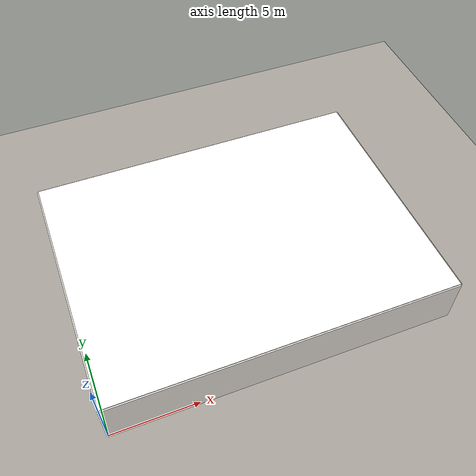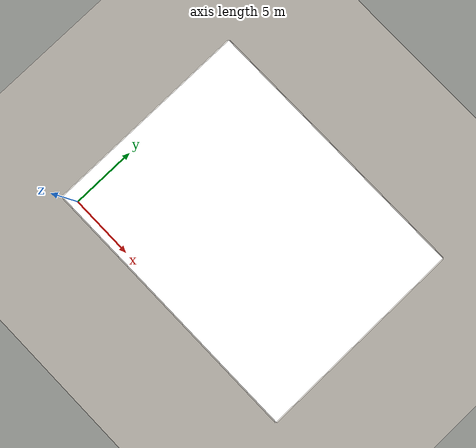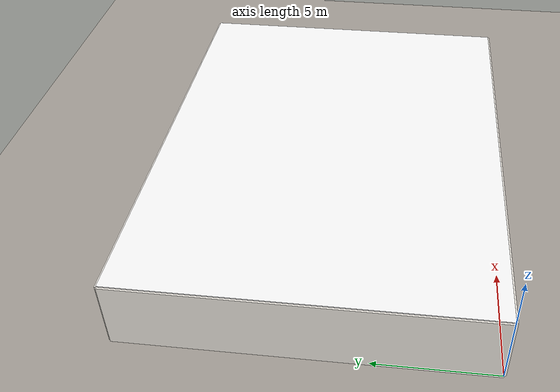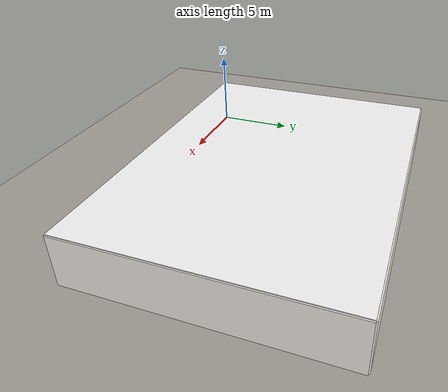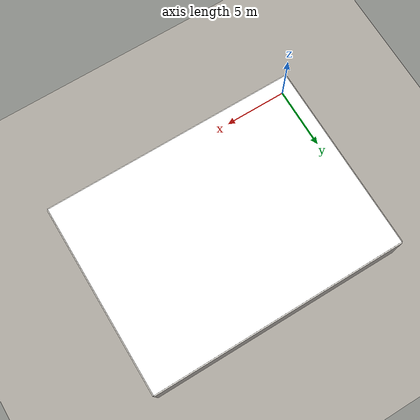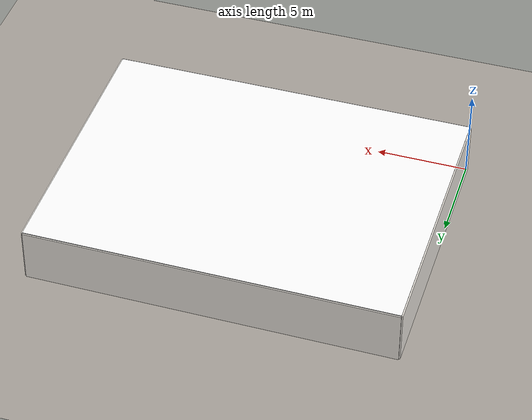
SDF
<sdf version="1.9">
 <world name="office_environment">
  <physics name="1ms" type="ode">
   <max_step_size>0.001</max_step_size>
   <real_time_factor>1.0</real_time_factor>
   <real_time_update_rate>1000</real_time_update_rate>
  </physics>
  <plugin filename="gz-sim-physics-system" name="gz::sim::systems::Physics"/>
  <plugin filename="gz-sim-sensors-system" name="gz::sim::systems::Sensors">
   <render_engine>ogre2</render_engine>
  </plugin>
  <plugin filename="gz-sim-user-commands-system" name="gz::sim::systems::UserCommands"/>
  <plugin filename="gz-sim-scene-broadcaster-system" name="gz::sim::systems::SceneBroadcaster"/>
  <plugin filename="gz-sim-imu-system" name="gz::sim::systems::Imu"/>
  <plugin filename="gz-sim-altimeter-system" name="gz::sim::systems::Altimeter"/>
  <light type="directional" name="sun">
   <pose>0 0 10 0 0 0</pose>
   <diffuse>0.8 0.8 0.78 1</diffuse>
   <specular>0.3 0.3 0.3 1</specular>
   <attenuation>
    <range>1000</range>
    <constant>0.9</constant>
    <linear>0.01</linear>
    <quadratic>0.001</quadratic>
   </attenuation>
   <direction>-0.5 0.2 -0.9</direction>
  </light>
  <light type="point" name="office_light_1">
   <pose>5 4 2.8 0 0 0</pose>
   <diffuse>1 0.95 0.9 1</diffuse>
   <specular>0.2 0.2 0.2 1</specular>
   <attenuation>
    <range>12</range>
    <constant>0.5</constant>
    <linear>0.1</linear>
    <quadratic>0.02</quadratic>
   </attenuation>
   <cast_shadows>false</cast_shadows>
  </light>
  <light type="point" name="office_light_2">
   <pose>10 4 2.8 0 0 0</pose>
   <diffuse>1 0.95 0.9 1</diffuse>
   <specular>0.2 0.2 0.2 1</specular>
   <attenuation>
    <range>12</range>
    <constant>0.5</constant>
    <linear>0.1</linear>
    <quadratic>0.02</quadratic>
   </attenuation>
   <cast_shadows>false</cast_shadows>
  </light>
  <light type="point" name="office_light_3">
   <pose>5 10 2.8 0 0 0</pose>
   <diffuse>1 0.95 0.9 1</diffuse>
   <specular>0.2 0.2 0.2 1</specular>
   <attenuation>
    <range>12</range>
    <constant>0.5</constant>
    <linear>0.1</linear>
    <quadratic>0.02</quadratic>
   </attenuation>
   <cast_shadows>false</cast_shadows>
  </light>
  <light type="point" name="corridor_light">
   <pose>15 7.5 2.8 0 0 0</pose>
   <diffuse>0.9 0.9 1 1</diffuse>
   <specular>0.2 0.2 0.2 1</specular>
   <attenuation>
    <range>10</range>
    <constant>0.5</constant>
    <linear>0.1</linear>
    <quadratic>0.02</quadratic>
   </attenuation>
   <cast_shadows>false</cast_shadows>
  </light>
  <model name="ground_plane">
   <static>true</static>
   <link name="link">
    <collision name="collision">
     <geometry><plane><normal>0 0 1</normal><size>30 20</size></plane></geometry>
    </collision>
    <visual name="visual">
     <geometry><plane><normal>0 0 1</normal><size>30 20</size></plane></geometry>
     <material>
      <ambient>0.6 0.58 0.55 1</ambient>
      <diffuse>0.65 0.63 0.6 1</diffuse>
      <specular>0.1 0.1 0.1 1</specular>
     </material>
    </visual>
   </link>
  </model>
  <model name="wall_north">
   <static>true</static>
   <pose>10 15 1.5 0 0 0</pose>
   <link name="link">
    <collision name="collision"><geometry><box><size>20 0.15 3.0</size></box></geometry></collision>
    <visual name="visual">
     <geometry><box><size>20 0.15 3.0</size></box></geometry>
     <material><ambient>0.9 0.9 0.88 1</ambient><diffuse>0.95 0.93 0.9 1</diffuse></material>
    </visual>
   </link>
  </model>
  <model name="wall_south">
   <static>true</static>
   <pose>10 0 1.5 0 0 0</pose>
   <link name="link">
    <collision name="collision"><geometry><box><size>20 0.15 3.0</size></box></geometry></collision>
    <visual name="visual">
     <geometry><box><size>20 0.15 3.0</size></box></geometry>
     <material><ambient>0.9 0.9 0.88 1</ambient><diffuse>0.95 0.93 0.9 1</diffuse></material>
    </visual>
   </link>
  </model>
  <model name="wall_east">
   <static>true</static>
   <pose>20 7.5 1.5 0 0 0</pose>
   <link name="link">
    <collision name="collision"><geometry><box><size>0.15 15 3.0</size></box></geometry></collision>
    <visual name="visual">
     <geometry><box><size>0.15 15 3.0</size></box></geometry>
     <material><ambient>0.9 0.9 0.88 1</ambient><diffuse>0.95 0.93 0.9 1</diffuse></material>
    </visual>
   </link>
  </model>
  <model name="wall_west">
   <static>true</static>
   <pose>0 7.5 1.5 0 0 0</pose>
   <link name="link">
    <collision name="collision"><geometry><box><size>0.15 15 3.0</size></box></geometry></collision>
    <visual name="visual">
     <geometry><box><size>0.15 15 3.0</size></box></geometry>
     <material><ambient>0.9 0.9 0.88 1</ambient><diffuse>0.95 0.93 0.9 1</diffuse></material>
    </visual>
   </link>
  </model>
  <model name="ceiling">
   <static>true</static>
   <pose>10 7.5 3.0 0 0 0</pose>
   <link name="link">
    <collision name="collision"><geometry><box><size>20 15 0.1</size></box></geometry></collision>
    <visual name="visual">
     <geometry><box><size>20 15 0.1</size></box></geometry>
     <material><ambient>0.95 0.95 0.95 1</ambient><diffuse>1 1 1 1</diffuse></material>
    </visual>
   </link>
  </model>
  <model name="wall_corridor_south">
   <static>true</static>
   <pose>8 5 1.5 0 0 0</pose>
   <link name="link">
    <collision name="collision"><geometry><box><size>12 0.12 3.0</size></box></geometry></collision>
    <visual name="visual">
     <geometry><box><size>12 0.12 3.0</size></box></geometry>
     <material><ambient>0.88 0.88 0.85 1</ambient><diffuse>0.92 0.9 0.88 1</diffuse></material>
    </visual>
   </link>
  </model>
  <model name="wall_corridor_north">
   <static>true</static>
   <pose>8 10 1.5 0 0 0</pose>
   <link name="link">
    <collision name="collision"><geometry><box><size>12 0.12 3.0</size></box></geometry></collision>
    <visual name="visual">
     <geometry><box><size>12 0.12 3.0</size></box></geometry>
     <material><ambient>0.88 0.88 0.85 1</ambient><diffuse>0.92 0.9 0.88 1</diffuse></material>
    </visual>
   </link>
  </model>
  <model name="wall_room_1">
   <static>true</static>
   <pose>7 2.5 1.5 0 0 0</pose>
   <link name="link">
    <collision name="collision"><geometry><box><size>0.12 5 3.0</size></box></geometry></collision>
    <visual name="visual">
     <geometry><box><size>0.12 5 3.0</size></box></geometry>
     <material><ambient>0.88 0.88 0.85 1</ambient><diffuse>0.92 0.9 0.88 1</diffuse></material>
    </visual>
   </link>
  </model>
  <model name="wall_room_2">
   <static>true</static>
   <pose>7 12.5 1.5 0 0 0</pose>
   <link name="link">
    <collision name="collision"><geometry><box><size>0.12 5 3.0</size></box></geometry></collision>
    <visual name="visual">
     <geometry><box><size>0.12 5 3.0</size></box></geometry>
     <material><ambient>0.88 0.88 0.85 1</ambient><diffuse>0.92 0.9 0.88 1</diffuse></material>
    </visual>
   </link>
  </model>
  <model name="desk_1">
   <static>true</static>
   <pose>3 2.5 0.37 0 0 0</pose>
   <link name="link">
    <collision name="collision"><geometry><box><size>1.4 0.7 0.74</size></box></geometry></collision>
    <visual name="visual">
     <geometry><box><size>1.4 0.7 0.74</size></box></geometry>
     <material><ambient>0.55 0.35 0.2 1</ambient><diffuse>0.6 0.4 0.25 1</diffuse></material>
    </visual>
   </link>
  </model>
  <model name="desk_2">
   <static>true</static>
   <pose>3 12 0.37 0 0 0</pose>
   <link name="link">
    <collision name="collision"><geometry><box><size>1.4 0.7 0.74</size></box></geometry></collision>
    <visual name="visual">
     <geometry><box><size>1.4 0.7 0.74</size></box></geometry>
     <material><ambient>0.55 0.35 0.2 1</ambient><diffuse>0.6 0.4 0.25 1</diffuse></material>
    </visual>
   </link>
  </model>
  <model name="desk_3">
   <static>true</static>
   <pose>12 2.5 0.37 0 0 0</pose>
   <link name="link">
    <collision name="collision"><geometry><box><size>1.6 0.8 0.74</size></box></geometry></collision>
    <visual name="visual">
     <geometry><box><size>1.6 0.8 0.74</size></box></geometry>
     <material><ambient>0.4 0.4 0.4 1</ambient><diffuse>0.5 0.5 0.5 1</diffuse></material>
    </visual>
   </link>
  </model>
  <model name="bookshelf_1">
   <static>true</static>
   <pose>1 7.5 1.0 0 0 0</pose>
   <link name="link">
    <collision name="collision"><geometry><box><size>0.35 1.2 2.0</size></box></geometry></collision>
    <visual name="visual">
     <geometry><box><size>0.35 1.2 2.0</size></box></geometry>
     <material><ambient>0.45 0.3 0.15 1</ambient><diffuse>0.5 0.35 0.2 1</diffuse></material>
    </visual>
   </link>
  </model>
  <model name="chair_1">
   <static>true</static>
   <pose>3 3.3 0.23 0 0 0</pose>
   <link name="link">
    <collision name="collision"><geometry><box><size>0.45 0.45 0.46</size></box></geometry></collision>
    <visual name="visual">
     <geometry><box><size>0.45 0.45 0.46</size></box></geometry>
     <material><ambient>0.15 0.15 0.15 1</ambient><diffuse>0.2 0.2 0.2 1</diffuse></material>
    </visual>
   </link>
  </model>
  <model name="chair_2">
   <static>true</static>
   <pose>12 3.3 0.23 0 0 0</pose>
   <link name="link">
    <collision name="collision"><geometry><box><size>0.45 0.45 0.46</size></box></geometry></collision>
    <visual name="visual">
     <geometry><box><size>0.45 0.45 0.46</size></box></geometry>
     <material><ambient>0.15 0.15 0.15 1</ambient><diffuse>0.2 0.2 0.2 1</diffuse></material>
    </visual>
   </link>
  </model>
  <model name="filing_cabinet">
   <static>true</static>
   <pose>19 2 0.6 0 0 0</pose>
   <link name="link">
    <collision name="collision"><geometry><box><size>0.45 0.6 1.2</size></box></geometry></collision>
    <visual name="visual">
     <geometry><box><size>0.45 0.6 1.2</size></box></geometry>
     <material><ambient>0.5 0.5 0.5 1</ambient><diffuse>0.6 0.6 0.6 1</diffuse></material>
    </visual>
   </link>
  </model>
  <model name="whiteboard">
   <static>true</static>
   <pose>10 14.9 1.5 0 0 0</pose>
   <link name="link">
    <visual name="visual">
     <geometry><box><size>2.0 0.03 1.2</size></box></geometry>
     <material>
      <ambient>0.95 0.95 0.95 1</ambient>
      <diffuse>1 1 1 1</diffuse>
      <specular>0.8 0.8 0.8 1</specular>
     </material>
    </visual>
   </link>
  </model>
  <model name="plant_1">
   <static>true</static>
   <pose>18 13 0.4 0 0 0</pose>
   <link name="link">
    <collision name="collision">
     <geometry><cylinder><radius>0.2</radius><length>0.8</length></cylinder></geometry>
    </collision>
    <visual name="pot">
     <pose>0 0 -0.2 0 0 0</pose>
     <geometry><cylinder><radius>0.15</radius><length>0.3</length></cylinder></geometry>
     <material><ambient>0.5 0.3 0.15 1</ambient><diffuse>0.6 0.35 0.2 1</diffuse></material>
    </visual>
    <visual name="leaves">
     <pose>0 0 0.15 0 0 0</pose>
     <geometry><sphere><radius>0.25</radius></sphere></geometry>
     <material><ambient>0.1 0.5 0.15 1</ambient><diffuse>0.15 0.6 0.2 1</diffuse></material>
    </visual>
   </link>
  </model>
 </world>
</sdf>
